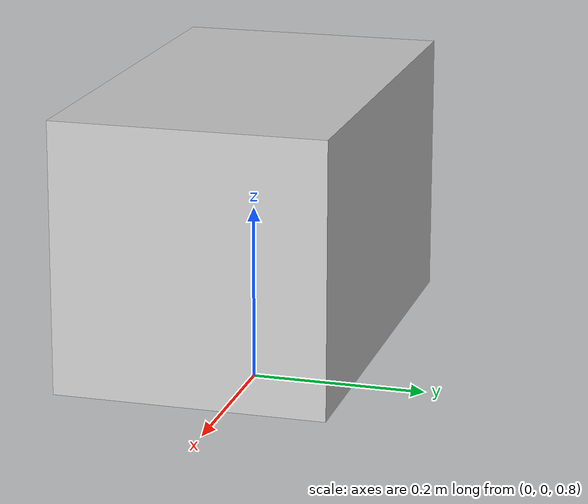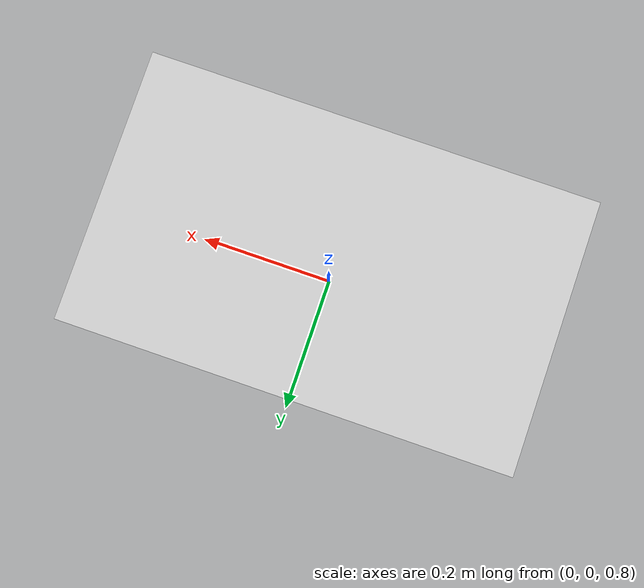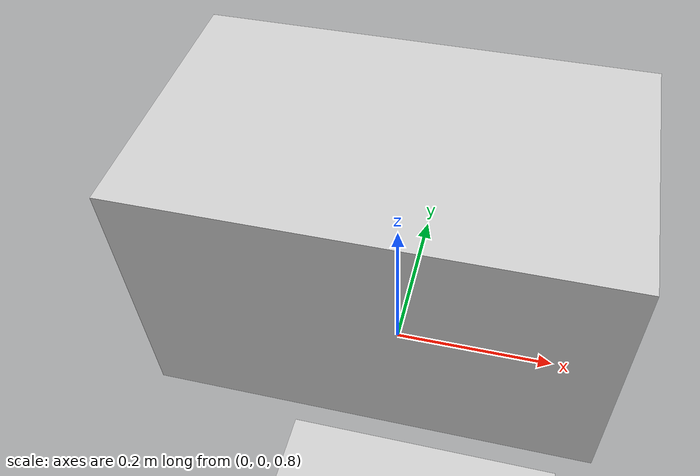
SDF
<?xml version="1.0" ?>
<sdf version="1.7">
  <world name="humanoid_physics_world">
    <!-- Physics Engine Configuration -->
    <physics type="ode">
      <max_step_size>0.001</max_step_size>
      <real_time_factor>1.0</real_time_factor>
      <real_time_update_rate>1000.0</real_time_update_rate>
      <gravity>0 0 -9.8</gravity>

      <!-- ODE Specific Parameters -->
      <ode>
        <solver>
          <type>quick</type>
          <iters>10</iters>
          <sor>1.3</sor>
        </solver>
        <constraints>
          <cfm>0.0</cfm>
          <erp>0.2</erp>
          <contact_max_correcting_vel>100.0</contact_max_correcting_vel>
          <contact_surface_layer>0.001</contact_surface_layer>
        </constraints>
      </ode>
    </physics>

    <!-- GUI Configuration -->
    <gui fullscreen="0">
      <camera name="user_camera">
        <pose>5.0 -5.0 2.0 0.0 0.3 1.1</pose>
        <view_controller>orbit</view_controller>
      </camera>
    </gui>

    <!-- Scene Configuration -->
    <scene>
      <ambient>0.4 0.4 0.4 1</ambient>
      <background>0.7 0.7 0.7 1</background>
      <shadows>true</shadows>
    </scene>

    <!-- Ground Plane -->
    <include>
      <uri>model://ground_plane</uri>
    </include>

    <!-- Lighting -->
    <include>
      <uri>model://sun</uri>
    </include>

    <!-- Example Humanoid Model Configuration -->
    <model name="humanoid_robot">
      <pose>0 0 1.0 0 0 0</pose>

      <!-- Base Link -->
      <link name="base_link">
        <inertial>
          <mass>10.0</mass>
          <inertia>
            <ixx>0.1</ixx>
            <ixy>0.0</ixy>
            <ixz>0.0</ixz>
            <iyy>0.1</iyy>
            <iyz>0.0</iyz>
            <izz>0.1</izz>
          </inertia>
        </inertial>

        <visual name="base_visual">
          <geometry>
            <box>
              <size>0.5 0.3 0.3</size>
            </box>
          </geometry>
          <material>
            <ambient>0.8 0.8 0.8 1</ambient>
            <diffuse>0.8 0.8 0.8 1</diffuse>
          </material>
        </visual>

        <collision name="base_collision">
          <geometry>
            <box>
              <size>0.5 0.3 0.3</size>
            </box>
          </geometry>
          <surface>
            <friction>
              <ode>
                <mu>1.0</mu>
                <mu2>1.0</mu2>
                <fdir1>0 0 0</fdir1>
                <slip1>0.0</slip1>
                <slip2>0.0</slip2>
              </ode>
              <torsional>
                <coefficient>1.0</coefficient>
                <use_patch_radius>false</use_patch_radius>
                <surface_radius>0.01</surface_radius>
              </torsional>
            </friction>
            <bounce>
              <restitution_coefficient>0.1</restitution_coefficient>
              <threshold>100000</threshold>
            </bounce>
            <contact>
              <ode>
                <soft_cfm>0.000000</soft_cfm>
                <soft_erp>0.200000</soft_erp>
                <kp>1000000000000.000000</kp>
                <kd>1.000000</kd>
                <max_vel>100.000000</max_vel>
                <min_depth>0.001000</min_depth>
              </ode>
            </contact>
          </surface>
        </collision>
      </link>

      <!-- Additional links and joints would go here -->

    </model>

    <!-- Additional objects/models can be added here -->

  </world>
</sdf>
